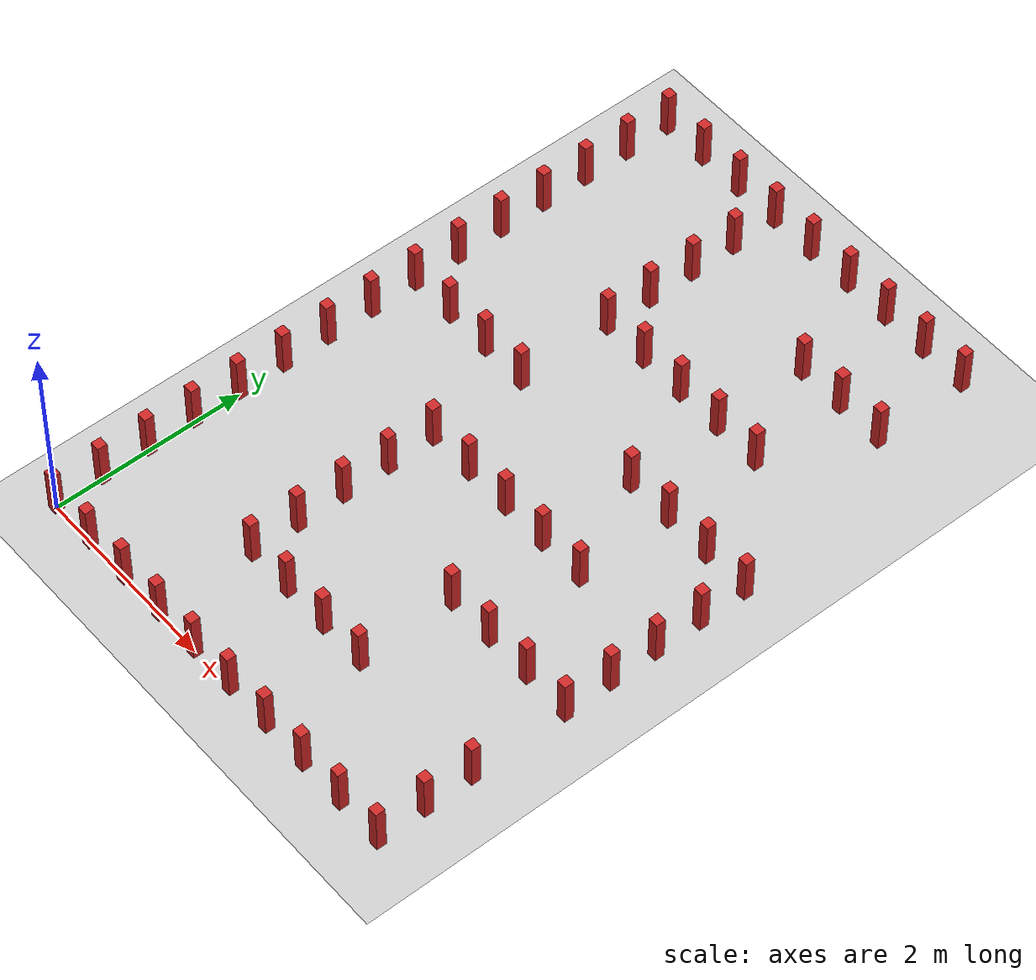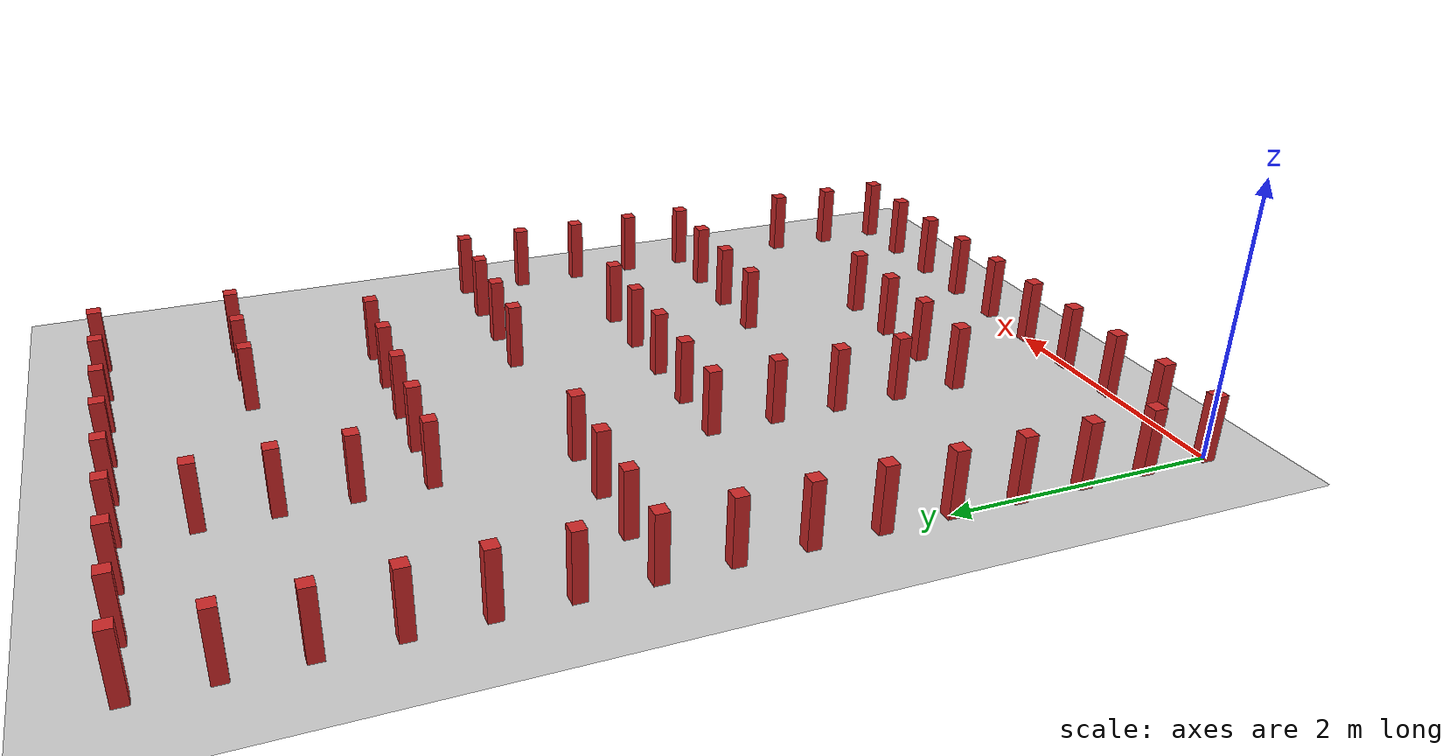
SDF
<sdf version="1.6">
 <world name="maze_assignment">
  <model name="ground_plane">
   <static>true</static>
   <link name="link">
    <collision name="collision">
     <geometry><plane><normal>0 0 1</normal><size>100 100</size></plane></geometry>
    </collision>
    <visual name="visual">
     <geometry><plane><normal>0 0 1</normal><size>100 100</size></plane></geometry>
     <material>
      <ambient>0.8 0.8 0.8 1</ambient>
      <diffuse>0.8 0.8 0.8 1</diffuse>
      <specular>0.8 0.8 0.8 1</specular>
     </material>
    </visual>
   </link>
  </model>
  <model name="maze_wall_0">
   <static>true</static>
   <link name="link">
    <collision name="collision"><geometry><box><size>0.1 0.1 0.5</size></box></geometry></collision>
    <visual name="visual">
     <geometry><box><size>0.1 0.1 0.5</size></box></geometry>
     <material>
      <script><uri>file://media/materials/scripts/gazebo.material</uri><name>Gazebo/Red</name></script>
     </material>
    </visual>
   </link>
   <pose>0.0 0.0 0.25 0 0 0</pose>
  </model>
  <model name="maze_wall_1">
   <static>true</static>
   <link name="link">
    <collision name="collision"><geometry><box><size>0.1 0.1 0.5</size></box></geometry></collision>
    <visual name="visual">
     <geometry><box><size>0.1 0.1 0.5</size></box></geometry>
     <material>
      <script><uri>file://media/materials/scripts/gazebo.material</uri><name>Gazebo/Red</name></script>
     </material>
    </visual>
   </link>
   <pose>0.5 0.0 0.25 0 0 0</pose>
  </model>
  <model name="maze_wall_2">
   <static>true</static>
   <link name="link">
    <collision name="collision"><geometry><box><size>0.1 0.1 0.5</size></box></geometry></collision>
    <visual name="visual">
     <geometry><box><size>0.1 0.1 0.5</size></box></geometry>
     <material>
      <script><uri>file://media/materials/scripts/gazebo.material</uri><name>Gazebo/Red</name></script>
     </material>
    </visual>
   </link>
   <pose>1.0 0.0 0.25 0 0 0</pose>
  </model>
  <model name="maze_wall_3">
   <static>true</static>
   <link name="link">
    <collision name="collision"><geometry><box><size>0.1 0.1 0.5</size></box></geometry></collision>
    <visual name="visual">
     <geometry><box><size>0.1 0.1 0.5</size></box></geometry>
     <material>
      <script><uri>file://media/materials/scripts/gazebo.material</uri><name>Gazebo/Red</name></script>
     </material>
    </visual>
   </link>
   <pose>1.5 0.0 0.25 0 0 0</pose>
  </model>
  <model name="maze_wall_4">
   <static>true</static>
   <link name="link">
    <collision name="collision"><geometry><box><size>0.1 0.1 0.5</size></box></geometry></collision>
    <visual name="visual">
     <geometry><box><size>0.1 0.1 0.5</size></box></geometry>
     <material>
      <script><uri>file://media/materials/scripts/gazebo.material</uri><name>Gazebo/Red</name></script>
     </material>
    </visual>
   </link>
   <pose>2.0 0.0 0.25 0 0 0</pose>
  </model>
  <model name="maze_wall_5">
   <static>true</static>
   <link name="link">
    <collision name="collision"><geometry><box><size>0.1 0.1 0.5</size></box></geometry></collision>
    <visual name="visual">
     <geometry><box><size>0.1 0.1 0.5</size></box></geometry>
     <material>
      <script><uri>file://media/materials/scripts/gazebo.material</uri><name>Gazebo/Red</name></script>
     </material>
    </visual>
   </link>
   <pose>2.5 0.0 0.25 0 0 0</pose>
  </model>
  <model name="maze_wall_6">
   <static>true</static>
   <link name="link">
    <collision name="collision"><geometry><box><size>0.1 0.1 0.5</size></box></geometry></collision>
    <visual name="visual">
     <geometry><box><size>0.1 0.1 0.5</size></box></geometry>
     <material>
      <script><uri>file://media/materials/scripts/gazebo.material</uri><name>Gazebo/Red</name></script>
     </material>
    </visual>
   </link>
   <pose>3.0 0.0 0.25 0 0 0</pose>
  </model>
  <model name="maze_wall_7">
   <static>true</static>
   <link name="link">
    <collision name="collision"><geometry><box><size>0.1 0.1 0.5</size></box></geometry></collision>
    <visual name="visual">
     <geometry><box><size>0.1 0.1 0.5</size></box></geometry>
     <material>
      <script><uri>file://media/materials/scripts/gazebo.material</uri><name>Gazebo/Red</name></script>
     </material>
    </visual>
   </link>
   <pose>3.5 0.0 0.25 0 0 0</pose>
  </model>
  <model name="maze_wall_8">
   <static>true</static>
   <link name="link">
    <collision name="collision"><geometry><box><size>0.1 0.1 0.5</size></box></geometry></collision>
    <visual name="visual">
     <geometry><box><size>0.1 0.1 0.5</size></box></geometry>
     <material>
      <script><uri>file://media/materials/scripts/gazebo.material</uri><name>Gazebo/Red</name></script>
     </material>
    </visual>
   </link>
   <pose>4.0 0.0 0.25 0 0 0</pose>
  </model>
  <model name="maze_wall_9">
   <static>true</static>
   <link name="link">
    <collision name="collision"><geometry><box><size>0.1 0.1 0.5</size></box></geometry></collision>
    <visual name="visual">
     <geometry><box><size>0.1 0.1 0.5</size></box></geometry>
     <material>
      <script><uri>file://media/materials/scripts/gazebo.material</uri><name>Gazebo/Red</name></script>
     </material>
    </visual>
   </link>
   <pose>4.5 0.0 0.25 0 0 0</pose>
  </model>
  <model name="maze_wall_20">
   <static>true</static>
   <link name="link">
    <collision name="collision"><geometry><box><size>0.1 0.1 0.5</size></box></geometry></collision>
    <visual name="visual">
     <geometry><box><size>0.1 0.1 0.5</size></box></geometry>
     <material>
      <script><uri>file://media/materials/scripts/gazebo.material</uri><name>Gazebo/Red</name></script>
     </material>
    </visual>
   </link>
   <pose>0.0 0.5 0.25 0 0 0</pose>
  </model>
  <model name="maze_wall_21">
   <static>true</static>
   <link name="link">
    <collision name="collision"><geometry><box><size>0.1 0.1 0.5</size></box></geometry></collision>
    <visual name="visual">
     <geometry><box><size>0.1 0.1 0.5</size></box></geometry>
     <material>
      <script><uri>file://media/materials/scripts/gazebo.material</uri><name>Gazebo/Red</name></script>
     </material>
    </visual>
   </link>
   <pose>4.5 0.5 0.25 0 0 0</pose>
  </model>
  <model name="maze_wall_23">
   <static>true</static>
   <link name="link">
    <collision name="collision"><geometry><box><size>0.1 0.1 0.5</size></box></geometry></collision>
    <visual name="visual">
     <geometry><box><size>0.1 0.1 0.5</size></box></geometry>
     <material>
      <script><uri>file://media/materials/scripts/gazebo.material</uri><name>Gazebo/Red</name></script>
     </material>
    </visual>
   </link>
   <pose>0.0 1.0 0.25 0 0 0</pose>
  </model>
  <model name="maze_wall_24">
   <static>true</static>
   <link name="link">
    <collision name="collision"><geometry><box><size>0.1 0.1 0.5</size></box></geometry></collision>
    <visual name="visual">
     <geometry><box><size>0.1 0.1 0.5</size></box></geometry>
     <material>
      <script><uri>file://media/materials/scripts/gazebo.material</uri><name>Gazebo/Red</name></script>
     </material>
    </visual>
   </link>
   <pose>1.5 1.0 0.25 0 0 0</pose>
  </model>
  <model name="maze_wall_25">
   <static>true</static>
   <link name="link">
    <collision name="collision"><geometry><box><size>0.1 0.1 0.5</size></box></geometry></collision>
    <visual name="visual">
     <geometry><box><size>0.1 0.1 0.5</size></box></geometry>
     <material>
      <script><uri>file://media/materials/scripts/gazebo.material</uri><name>Gazebo/Red</name></script>
     </material>
    </visual>
   </link>
   <pose>2.0 1.0 0.25 0 0 0</pose>
  </model>
  <model name="maze_wall_26">
   <static>true</static>
   <link name="link">
    <collision name="collision"><geometry><box><size>0.1 0.1 0.5</size></box></geometry></collision>
    <visual name="visual">
     <geometry><box><size>0.1 0.1 0.5</size></box></geometry>
     <material>
      <script><uri>file://media/materials/scripts/gazebo.material</uri><name>Gazebo/Red</name></script>
     </material>
    </visual>
   </link>
   <pose>2.5 1.0 0.25 0 0 0</pose>
  </model>
  <model name="maze_wall_27">
   <static>true</static>
   <link name="link">
    <collision name="collision"><geometry><box><size>0.1 0.1 0.5</size></box></geometry></collision>
    <visual name="visual">
     <geometry><box><size>0.1 0.1 0.5</size></box></geometry>
     <material>
      <script><uri>file://media/materials/scripts/gazebo.material</uri><name>Gazebo/Red</name></script>
     </material>
    </visual>
   </link>
   <pose>3.0 1.0 0.25 0 0 0</pose>
  </model>
  <model name="maze_wall_28">
   <static>true</static>
   <link name="link">
    <collision name="collision"><geometry><box><size>0.1 0.1 0.5</size></box></geometry></collision>
    <visual name="visual">
     <geometry><box><size>0.1 0.1 0.5</size></box></geometry>
     <material>
      <script><uri>file://media/materials/scripts/gazebo.material</uri><name>Gazebo/Red</name></script>
     </material>
    </visual>
   </link>
   <pose>4.5 1.0 0.25 0 0 0</pose>
  </model>
  <model name="maze_wall_35">
   <static>true</static>
   <link name="link">
    <collision name="collision"><geometry><box><size>0.1 0.1 0.5</size></box></geometry></collision>
    <visual name="visual">
     <geometry><box><size>0.1 0.1 0.5</size></box></geometry>
     <material>
      <script><uri>file://media/materials/scripts/gazebo.material</uri><name>Gazebo/Red</name></script>
     </material>
    </visual>
   </link>
   <pose>0.0 1.5 0.25 0 0 0</pose>
  </model>
  <model name="maze_wall_36">
   <static>true</static>
   <link name="link">
    <collision name="collision"><geometry><box><size>0.1 0.1 0.5</size></box></geometry></collision>
    <visual name="visual">
     <geometry><box><size>0.1 0.1 0.5</size></box></geometry>
     <material>
      <script><uri>file://media/materials/scripts/gazebo.material</uri><name>Gazebo/Red</name></script>
     </material>
    </visual>
   </link>
   <pose>1.5 1.5 0.25 0 0 0</pose>
  </model>
  <model name="maze_wall_39">
   <static>true</static>
   <link name="link">
    <collision name="collision"><geometry><box><size>0.1 0.1 0.5</size></box></geometry></collision>
    <visual name="visual">
     <geometry><box><size>0.1 0.1 0.5</size></box></geometry>
     <material>
      <script><uri>file://media/materials/scripts/gazebo.material</uri><name>Gazebo/Red</name></script>
     </material>
    </visual>
   </link>
   <pose>0.0 2.0 0.25 0 0 0</pose>
  </model>
  <model name="maze_wall_40">
   <static>true</static>
   <link name="link">
    <collision name="collision"><geometry><box><size>0.1 0.1 0.5</size></box></geometry></collision>
    <visual name="visual">
     <geometry><box><size>0.1 0.1 0.5</size></box></geometry>
     <material>
      <script><uri>file://media/materials/scripts/gazebo.material</uri><name>Gazebo/Red</name></script>
     </material>
    </visual>
   </link>
   <pose>1.5 2.0 0.25 0 0 0</pose>
  </model>
  <model name="maze_wall_41">
   <static>true</static>
   <link name="link">
    <collision name="collision"><geometry><box><size>0.1 0.1 0.5</size></box></geometry></collision>
    <visual name="visual">
     <geometry><box><size>0.1 0.1 0.5</size></box></geometry>
     <material>
      <script><uri>file://media/materials/scripts/gazebo.material</uri><name>Gazebo/Red</name></script>
     </material>
    </visual>
   </link>
   <pose>3.0 2.0 0.25 0 0 0</pose>
  </model>
  <model name="maze_wall_42">
   <static>true</static>
   <link name="link">
    <collision name="collision"><geometry><box><size>0.1 0.1 0.5</size></box></geometry></collision>
    <visual name="visual">
     <geometry><box><size>0.1 0.1 0.5</size></box></geometry>
     <material>
      <script><uri>file://media/materials/scripts/gazebo.material</uri><name>Gazebo/Red</name></script>
     </material>
    </visual>
   </link>
   <pose>3.5 2.0 0.25 0 0 0</pose>
  </model>
  <model name="maze_wall_43">
   <static>true</static>
   <link name="link">
    <collision name="collision"><geometry><box><size>0.1 0.1 0.5</size></box></geometry></collision>
    <visual name="visual">
     <geometry><box><size>0.1 0.1 0.5</size></box></geometry>
     <material>
      <script><uri>file://media/materials/scripts/gazebo.material</uri><name>Gazebo/Red</name></script>
     </material>
    </visual>
   </link>
   <pose>4.0 2.0 0.25 0 0 0</pose>
  </model>
  <model name="maze_wall_44">
   <static>true</static>
   <link name="link">
    <collision name="collision"><geometry><box><size>0.1 0.1 0.5</size></box></geometry></collision>
    <visual name="visual">
     <geometry><box><size>0.1 0.1 0.5</size></box></geometry>
     <material>
      <script><uri>file://media/materials/scripts/gazebo.material</uri><name>Gazebo/Red</name></script>
     </material>
    </visual>
   </link>
   <pose>4.5 2.0 0.25 0 0 0</pose>
  </model>
  <model name="maze_wall_51">
   <static>true</static>
   <link name="link">
    <collision name="collision"><geometry><box><size>0.1 0.1 0.5</size></box></geometry></collision>
    <visual name="visual">
     <geometry><box><size>0.1 0.1 0.5</size></box></geometry>
     <material>
      <script><uri>file://media/materials/scripts/gazebo.material</uri><name>Gazebo/Red</name></script>
     </material>
    </visual>
   </link>
   <pose>0.0 2.5 0.25 0 0 0</pose>
  </model>
  <model name="maze_wall_52">
   <static>true</static>
   <link name="link">
    <collision name="collision"><geometry><box><size>0.1 0.1 0.5</size></box></geometry></collision>
    <visual name="visual">
     <geometry><box><size>0.1 0.1 0.5</size></box></geometry>
     <material>
      <script><uri>file://media/materials/scripts/gazebo.material</uri><name>Gazebo/Red</name></script>
     </material>
    </visual>
   </link>
   <pose>1.5 2.5 0.25 0 0 0</pose>
  </model>
  <model name="maze_wall_53">
   <static>true</static>
   <link name="link">
    <collision name="collision"><geometry><box><size>0.1 0.1 0.5</size></box></geometry></collision>
    <visual name="visual">
     <geometry><box><size>0.1 0.1 0.5</size></box></geometry>
     <material>
      <script><uri>file://media/materials/scripts/gazebo.material</uri><name>Gazebo/Red</name></script>
     </material>
    </visual>
   </link>
   <pose>4.5 2.5 0.25 0 0 0</pose>
  </model>
  <model name="maze_wall_55">
   <static>true</static>
   <link name="link">
    <collision name="collision"><geometry><box><size>0.1 0.1 0.5</size></box></geometry></collision>
    <visual name="visual">
     <geometry><box><size>0.1 0.1 0.5</size></box></geometry>
     <material>
      <script><uri>file://media/materials/scripts/gazebo.material</uri><name>Gazebo/Red</name></script>
     </material>
    </visual>
   </link>
   <pose>0.0 3.0 0.25 0 0 0</pose>
  </model>
  <model name="maze_wall_56">
   <static>true</static>
   <link name="link">
    <collision name="collision"><geometry><box><size>0.1 0.1 0.5</size></box></geometry></collision>
    <visual name="visual">
     <geometry><box><size>0.1 0.1 0.5</size></box></geometry>
     <material>
      <script><uri>file://media/materials/scripts/gazebo.material</uri><name>Gazebo/Red</name></script>
     </material>
    </visual>
   </link>
   <pose>1.5 3.0 0.25 0 0 0</pose>
  </model>
  <model name="maze_wall_57">
   <static>true</static>
   <link name="link">
    <collision name="collision"><geometry><box><size>0.1 0.1 0.5</size></box></geometry></collision>
    <visual name="visual">
     <geometry><box><size>0.1 0.1 0.5</size></box></geometry>
     <material>
      <script><uri>file://media/materials/scripts/gazebo.material</uri><name>Gazebo/Red</name></script>
     </material>
    </visual>
   </link>
   <pose>2.0 3.0 0.25 0 0 0</pose>
  </model>
  <model name="maze_wall_58">
   <static>true</static>
   <link name="link">
    <collision name="collision"><geometry><box><size>0.1 0.1 0.5</size></box></geometry></collision>
    <visual name="visual">
     <geometry><box><size>0.1 0.1 0.5</size></box></geometry>
     <material>
      <script><uri>file://media/materials/scripts/gazebo.material</uri><name>Gazebo/Red</name></script>
     </material>
    </visual>
   </link>
   <pose>2.5 3.0 0.25 0 0 0</pose>
  </model>
  <model name="maze_wall_59">
   <static>true</static>
   <link name="link">
    <collision name="collision"><geometry><box><size>0.1 0.1 0.5</size></box></geometry></collision>
    <visual name="visual">
     <geometry><box><size>0.1 0.1 0.5</size></box></geometry>
     <material>
      <script><uri>file://media/materials/scripts/gazebo.material</uri><name>Gazebo/Red</name></script>
     </material>
    </visual>
   </link>
   <pose>3.0 3.0 0.25 0 0 0</pose>
  </model>
  <model name="maze_wall_60">
   <static>true</static>
   <link name="link">
    <collision name="collision"><geometry><box><size>0.1 0.1 0.5</size></box></geometry></collision>
    <visual name="visual">
     <geometry><box><size>0.1 0.1 0.5</size></box></geometry>
     <material>
      <script><uri>file://media/materials/scripts/gazebo.material</uri><name>Gazebo/Red</name></script>
     </material>
    </visual>
   </link>
   <pose>3.5 3.0 0.25 0 0 0</pose>
  </model>
  <model name="maze_wall_61">
   <static>true</static>
   <link name="link">
    <collision name="collision"><geometry><box><size>0.1 0.1 0.5</size></box></geometry></collision>
    <visual name="visual">
     <geometry><box><size>0.1 0.1 0.5</size></box></geometry>
     <material>
      <script><uri>file://media/materials/scripts/gazebo.material</uri><name>Gazebo/Red</name></script>
     </material>
    </visual>
   </link>
   <pose>4.5 3.0 0.25 0 0 0</pose>
  </model>
  <model name="maze_wall_69">
   <static>true</static>
   <link name="link">
    <collision name="collision"><geometry><box><size>0.1 0.1 0.5</size></box></geometry></collision>
    <visual name="visual">
     <geometry><box><size>0.1 0.1 0.5</size></box></geometry>
     <material>
      <script><uri>file://media/materials/scripts/gazebo.material</uri><name>Gazebo/Red</name></script>
     </material>
    </visual>
   </link>
   <pose>0.0 3.5 0.25 0 0 0</pose>
  </model>
  <model name="maze_wall_70">
   <static>true</static>
   <link name="link">
    <collision name="collision"><geometry><box><size>0.1 0.1 0.5</size></box></geometry></collision>
    <visual name="visual">
     <geometry><box><size>0.1 0.1 0.5</size></box></geometry>
     <material>
      <script><uri>file://media/materials/scripts/gazebo.material</uri><name>Gazebo/Red</name></script>
     </material>
    </visual>
   </link>
   <pose>4.5 3.5 0.25 0 0 0</pose>
  </model>
  <model name="maze_wall_72">
   <static>true</static>
   <link name="link">
    <collision name="collision"><geometry><box><size>0.1 0.1 0.5</size></box></geometry></collision>
    <visual name="visual">
     <geometry><box><size>0.1 0.1 0.5</size></box></geometry>
     <material>
      <script><uri>file://media/materials/scripts/gazebo.material</uri><name>Gazebo/Red</name></script>
     </material>
    </visual>
   </link>
   <pose>0.0 4.0 0.25 0 0 0</pose>
  </model>
  <model name="maze_wall_73">
   <static>true</static>
   <link name="link">
    <collision name="collision"><geometry><box><size>0.1 0.1 0.5</size></box></geometry></collision>
    <visual name="visual">
     <geometry><box><size>0.1 0.1 0.5</size></box></geometry>
     <material>
      <script><uri>file://media/materials/scripts/gazebo.material</uri><name>Gazebo/Red</name></script>
     </material>
    </visual>
   </link>
   <pose>0.5 4.0 0.25 0 0 0</pose>
  </model>
  <model name="maze_wall_74">
   <static>true</static>
   <link name="link">
    <collision name="collision"><geometry><box><size>0.1 0.1 0.5</size></box></geometry></collision>
    <visual name="visual">
     <geometry><box><size>0.1 0.1 0.5</size></box></geometry>
     <material>
      <script><uri>file://media/materials/scripts/gazebo.material</uri><name>Gazebo/Red</name></script>
     </material>
    </visual>
   </link>
   <pose>1.0 4.0 0.25 0 0 0</pose>
  </model>
  <model name="maze_wall_75">
   <static>true</static>
   <link name="link">
    <collision name="collision"><geometry><box><size>0.1 0.1 0.5</size></box></geometry></collision>
    <visual name="visual">
     <geometry><box><size>0.1 0.1 0.5</size></box></geometry>
     <material>
      <script><uri>file://media/materials/scripts/gazebo.material</uri><name>Gazebo/Red</name></script>
     </material>
    </visual>
   </link>
   <pose>1.5 4.0 0.25 0 0 0</pose>
  </model>
  <model name="maze_wall_76">
   <static>true</static>
   <link name="link">
    <collision name="collision"><geometry><box><size>0.1 0.1 0.5</size></box></geometry></collision>
    <visual name="visual">
     <geometry><box><size>0.1 0.1 0.5</size></box></geometry>
     <material>
      <script><uri>file://media/materials/scripts/gazebo.material</uri><name>Gazebo/Red</name></script>
     </material>
    </visual>
   </link>
   <pose>3.0 4.0 0.25 0 0 0</pose>
  </model>
  <model name="maze_wall_77">
   <static>true</static>
   <link name="link">
    <collision name="collision"><geometry><box><size>0.1 0.1 0.5</size></box></geometry></collision>
    <visual name="visual">
     <geometry><box><size>0.1 0.1 0.5</size></box></geometry>
     <material>
      <script><uri>file://media/materials/scripts/gazebo.material</uri><name>Gazebo/Red</name></script>
     </material>
    </visual>
   </link>
   <pose>3.5 4.0 0.25 0 0 0</pose>
  </model>
  <model name="maze_wall_78">
   <static>true</static>
   <link name="link">
    <collision name="collision"><geometry><box><size>0.1 0.1 0.5</size></box></geometry></collision>
    <visual name="visual">
     <geometry><box><size>0.1 0.1 0.5</size></box></geometry>
     <material>
      <script><uri>file://media/materials/scripts/gazebo.material</uri><name>Gazebo/Red</name></script>
     </material>
    </visual>
   </link>
   <pose>4.0 4.0 0.25 0 0 0</pose>
  </model>
  <model name="maze_wall_79">
   <static>true</static>
   <link name="link">
    <collision name="collision"><geometry><box><size>0.1 0.1 0.5</size></box></geometry></collision>
    <visual name="visual">
     <geometry><box><size>0.1 0.1 0.5</size></box></geometry>
     <material>
      <script><uri>file://media/materials/scripts/gazebo.material</uri><name>Gazebo/Red</name></script>
     </material>
    </visual>
   </link>
   <pose>4.5 4.0 0.25 0 0 0</pose>
  </model>
  <model name="maze_wall_86">
   <static>true</static>
   <link name="link">
    <collision name="collision"><geometry><box><size>0.1 0.1 0.5</size></box></geometry></collision>
    <visual name="visual">
     <geometry><box><size>0.1 0.1 0.5</size></box></geometry>
     <material>
      <script><uri>file://media/materials/scripts/gazebo.material</uri><name>Gazebo/Red</name></script>
     </material>
    </visual>
   </link>
   <pose>0.0 4.5 0.25 0 0 0</pose>
  </model>
  <model name="maze_wall_89">
   <static>true</static>
   <link name="link">
    <collision name="collision"><geometry><box><size>0.1 0.1 0.5</size></box></geometry></collision>
    <visual name="visual">
     <geometry><box><size>0.1 0.1 0.5</size></box></geometry>
     <material>
      <script><uri>file://media/materials/scripts/gazebo.material</uri><name>Gazebo/Red</name></script>
     </material>
    </visual>
   </link>
   <pose>0.0 5.0 0.25 0 0 0</pose>
  </model>
  <model name="maze_wall_90">
   <static>true</static>
   <link name="link">
    <collision name="collision"><geometry><box><size>0.1 0.1 0.5</size></box></geometry></collision>
    <visual name="visual">
     <geometry><box><size>0.1 0.1 0.5</size></box></geometry>
     <material>
      <script><uri>file://media/materials/scripts/gazebo.material</uri><name>Gazebo/Red</name></script>
     </material>
    </visual>
   </link>
   <pose>1.5 5.0 0.25 0 0 0</pose>
  </model>
  <model name="maze_wall_91">
   <static>true</static>
   <link name="link">
    <collision name="collision"><geometry><box><size>0.1 0.1 0.5</size></box></geometry></collision>
    <visual name="visual">
     <geometry><box><size>0.1 0.1 0.5</size></box></geometry>
     <material>
      <script><uri>file://media/materials/scripts/gazebo.material</uri><name>Gazebo/Red</name></script>
     </material>
    </visual>
   </link>
   <pose>2.0 5.0 0.25 0 0 0</pose>
  </model>
  <model name="maze_wall_92">
   <static>true</static>
   <link name="link">
    <collision name="collision"><geometry><box><size>0.1 0.1 0.5</size></box></geometry></collision>
    <visual name="visual">
     <geometry><box><size>0.1 0.1 0.5</size></box></geometry>
     <material>
      <script><uri>file://media/materials/scripts/gazebo.material</uri><name>Gazebo/Red</name></script>
     </material>
    </visual>
   </link>
   <pose>2.5 5.0 0.25 0 0 0</pose>
  </model>
  <model name="maze_wall_93">
   <static>true</static>
   <link name="link">
    <collision name="collision"><geometry><box><size>0.1 0.1 0.5</size></box></geometry></collision>
    <visual name="visual">
     <geometry><box><size>0.1 0.1 0.5</size></box></geometry>
     <material>
      <script><uri>file://media/materials/scripts/gazebo.material</uri><name>Gazebo/Red</name></script>
     </material>
    </visual>
   </link>
   <pose>3.0 5.0 0.25 0 0 0</pose>
  </model>
  <model name="maze_wall_94">
   <static>true</static>
   <link name="link">
    <collision name="collision"><geometry><box><size>0.1 0.1 0.5</size></box></geometry></collision>
    <visual name="visual">
     <geometry><box><size>0.1 0.1 0.5</size></box></geometry>
     <material>
      <script><uri>file://media/materials/scripts/gazebo.material</uri><name>Gazebo/Red</name></script>
     </material>
    </visual>
   </link>
   <pose>3.5 5.0 0.25 0 0 0</pose>
  </model>
  <model name="maze_wall_101">
   <static>true</static>
   <link name="link">
    <collision name="collision"><geometry><box><size>0.1 0.1 0.5</size></box></geometry></collision>
    <visual name="visual">
     <geometry><box><size>0.1 0.1 0.5</size></box></geometry>
     <material>
      <script><uri>file://media/materials/scripts/gazebo.material</uri><name>Gazebo/Red</name></script>
     </material>
    </visual>
   </link>
   <pose>0.0 5.5 0.25 0 0 0</pose>
  </model>
  <model name="maze_wall_102">
   <static>true</static>
   <link name="link">
    <collision name="collision"><geometry><box><size>0.1 0.1 0.5</size></box></geometry></collision>
    <visual name="visual">
     <geometry><box><size>0.1 0.1 0.5</size></box></geometry>
     <material>
      <script><uri>file://media/materials/scripts/gazebo.material</uri><name>Gazebo/Red</name></script>
     </material>
    </visual>
   </link>
   <pose>1.5 5.5 0.25 0 0 0</pose>
  </model>
  <model name="maze_wall_106">
   <static>true</static>
   <link name="link">
    <collision name="collision"><geometry><box><size>0.1 0.1 0.5</size></box></geometry></collision>
    <visual name="visual">
     <geometry><box><size>0.1 0.1 0.5</size></box></geometry>
     <material>
      <script><uri>file://media/materials/scripts/gazebo.material</uri><name>Gazebo/Red</name></script>
     </material>
    </visual>
   </link>
   <pose>0.0 6.0 0.25 0 0 0</pose>
  </model>
  <model name="maze_wall_107">
   <static>true</static>
   <link name="link">
    <collision name="collision"><geometry><box><size>0.1 0.1 0.5</size></box></geometry></collision>
    <visual name="visual">
     <geometry><box><size>0.1 0.1 0.5</size></box></geometry>
     <material>
      <script><uri>file://media/materials/scripts/gazebo.material</uri><name>Gazebo/Red</name></script>
     </material>
    </visual>
   </link>
   <pose>1.5 6.0 0.25 0 0 0</pose>
  </model>
  <model name="maze_wall_108">
   <static>true</static>
   <link name="link">
    <collision name="collision"><geometry><box><size>0.1 0.1 0.5</size></box></geometry></collision>
    <visual name="visual">
     <geometry><box><size>0.1 0.1 0.5</size></box></geometry>
     <material>
      <script><uri>file://media/materials/scripts/gazebo.material</uri><name>Gazebo/Red</name></script>
     </material>
    </visual>
   </link>
   <pose>3.0 6.0 0.25 0 0 0</pose>
  </model>
  <model name="maze_wall_109">
   <static>true</static>
   <link name="link">
    <collision name="collision"><geometry><box><size>0.1 0.1 0.5</size></box></geometry></collision>
    <visual name="visual">
     <geometry><box><size>0.1 0.1 0.5</size></box></geometry>
     <material>
      <script><uri>file://media/materials/scripts/gazebo.material</uri><name>Gazebo/Red</name></script>
     </material>
    </visual>
   </link>
   <pose>3.5 6.0 0.25 0 0 0</pose>
  </model>
  <model name="maze_wall_110">
   <static>true</static>
   <link name="link">
    <collision name="collision"><geometry><box><size>0.1 0.1 0.5</size></box></geometry></collision>
    <visual name="visual">
     <geometry><box><size>0.1 0.1 0.5</size></box></geometry>
     <material>
      <script><uri>file://media/materials/scripts/gazebo.material</uri><name>Gazebo/Red</name></script>
     </material>
    </visual>
   </link>
   <pose>4.0 6.0 0.25 0 0 0</pose>
  </model>
  <model name="maze_wall_119">
   <static>true</static>
   <link name="link">
    <collision name="collision"><geometry><box><size>0.1 0.1 0.5</size></box></geometry></collision>
    <visual name="visual">
     <geometry><box><size>0.1 0.1 0.5</size></box></geometry>
     <material>
      <script><uri>file://media/materials/scripts/gazebo.material</uri><name>Gazebo/Red</name></script>
     </material>
    </visual>
   </link>
   <pose>0.0 6.5 0.25 0 0 0</pose>
  </model>
  <model name="maze_wall_120">
   <static>true</static>
   <link name="link">
    <collision name="collision"><geometry><box><size>0.1 0.1 0.5</size></box></geometry></collision>
    <visual name="visual">
     <geometry><box><size>0.1 0.1 0.5</size></box></geometry>
     <material>
      <script><uri>file://media/materials/scripts/gazebo.material</uri><name>Gazebo/Red</name></script>
     </material>
    </visual>
   </link>
   <pose>1.5 6.5 0.25 0 0 0</pose>
  </model>
  <model name="maze_wall_122">
   <static>true</static>
   <link name="link">
    <collision name="collision"><geometry><box><size>0.1 0.1 0.5</size></box></geometry></collision>
    <visual name="visual">
     <geometry><box><size>0.1 0.1 0.5</size></box></geometry>
     <material>
      <script><uri>file://media/materials/scripts/gazebo.material</uri><name>Gazebo/Red</name></script>
     </material>
    </visual>
   </link>
   <pose>0.0 7.0 0.25 0 0 0</pose>
  </model>
  <model name="maze_wall_123">
   <static>true</static>
   <link name="link">
    <collision name="collision"><geometry><box><size>0.1 0.1 0.5</size></box></geometry></collision>
    <visual name="visual">
     <geometry><box><size>0.1 0.1 0.5</size></box></geometry>
     <material>
      <script><uri>file://media/materials/scripts/gazebo.material</uri><name>Gazebo/Red</name></script>
     </material>
    </visual>
   </link>
   <pose>0.5 7.0 0.25 0 0 0</pose>
  </model>
  <model name="maze_wall_124">
   <static>true</static>
   <link name="link">
    <collision name="collision"><geometry><box><size>0.1 0.1 0.5</size></box></geometry></collision>
    <visual name="visual">
     <geometry><box><size>0.1 0.1 0.5</size></box></geometry>
     <material>
      <script><uri>file://media/materials/scripts/gazebo.material</uri><name>Gazebo/Red</name></script>
     </material>
    </visual>
   </link>
   <pose>1.0 7.0 0.25 0 0 0</pose>
  </model>
  <model name="maze_wall_125">
   <static>true</static>
   <link name="link">
    <collision name="collision"><geometry><box><size>0.1 0.1 0.5</size></box></geometry></collision>
    <visual name="visual">
     <geometry><box><size>0.1 0.1 0.5</size></box></geometry>
     <material>
      <script><uri>file://media/materials/scripts/gazebo.material</uri><name>Gazebo/Red</name></script>
     </material>
    </visual>
   </link>
   <pose>1.5 7.0 0.25 0 0 0</pose>
  </model>
  <model name="maze_wall_126">
   <static>true</static>
   <link name="link">
    <collision name="collision"><geometry><box><size>0.1 0.1 0.5</size></box></geometry></collision>
    <visual name="visual">
     <geometry><box><size>0.1 0.1 0.5</size></box></geometry>
     <material>
      <script><uri>file://media/materials/scripts/gazebo.material</uri><name>Gazebo/Red</name></script>
     </material>
    </visual>
   </link>
   <pose>2.0 7.0 0.25 0 0 0</pose>
  </model>
  <model name="maze_wall_127">
   <static>true</static>
   <link name="link">
    <collision name="collision"><geometry><box><size>0.1 0.1 0.5</size></box></geometry></collision>
    <visual name="visual">
     <geometry><box><size>0.1 0.1 0.5</size></box></geometry>
     <material>
      <script><uri>file://media/materials/scripts/gazebo.material</uri><name>Gazebo/Red</name></script>
     </material>
    </visual>
   </link>
   <pose>2.5 7.0 0.25 0 0 0</pose>
  </model>
  <model name="maze_wall_128">
   <static>true</static>
   <link name="link">
    <collision name="collision"><geometry><box><size>0.1 0.1 0.5</size></box></geometry></collision>
    <visual name="visual">
     <geometry><box><size>0.1 0.1 0.5</size></box></geometry>
     <material>
      <script><uri>file://media/materials/scripts/gazebo.material</uri><name>Gazebo/Red</name></script>
     </material>
    </visual>
   </link>
   <pose>3.0 7.0 0.25 0 0 0</pose>
  </model>
  <model name="maze_wall_129">
   <static>true</static>
   <link name="link">
    <collision name="collision"><geometry><box><size>0.1 0.1 0.5</size></box></geometry></collision>
    <visual name="visual">
     <geometry><box><size>0.1 0.1 0.5</size></box></geometry>
     <material>
      <script><uri>file://media/materials/scripts/gazebo.material</uri><name>Gazebo/Red</name></script>
     </material>
    </visual>
   </link>
   <pose>3.5 7.0 0.25 0 0 0</pose>
  </model>
  <model name="maze_wall_130">
   <static>true</static>
   <link name="link">
    <collision name="collision"><geometry><box><size>0.1 0.1 0.5</size></box></geometry></collision>
    <visual name="visual">
     <geometry><box><size>0.1 0.1 0.5</size></box></geometry>
     <material>
      <script><uri>file://media/materials/scripts/gazebo.material</uri><name>Gazebo/Red</name></script>
     </material>
    </visual>
   </link>
   <pose>4.0 7.0 0.25 0 0 0</pose>
  </model>
 </world>
</sdf>
